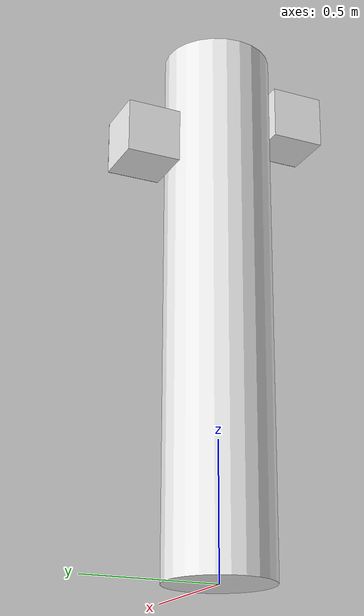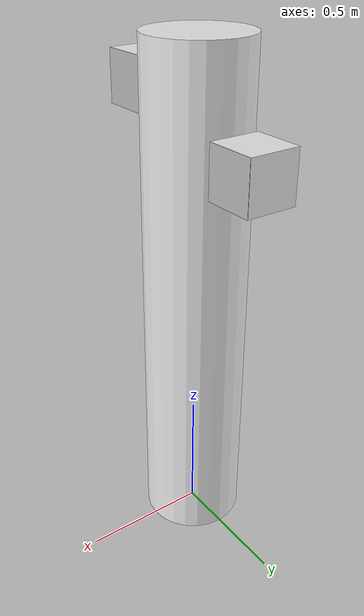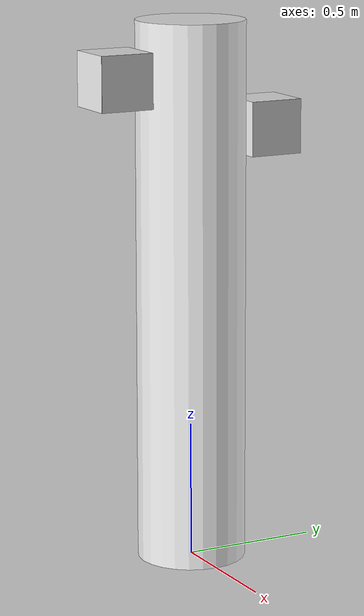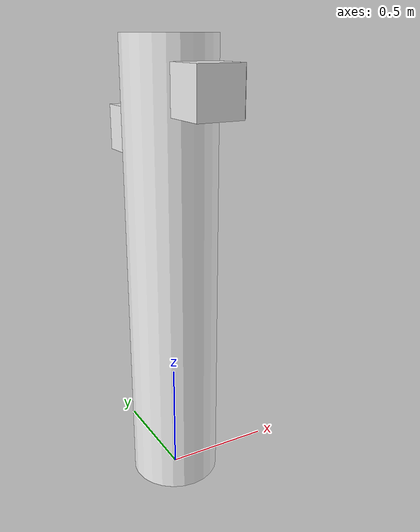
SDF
<?xml version="1.0" ?>
<sdf version="1.4">
  <model name="Torre_eletrica">
    <static>true</static>

    <link name="Tower">
    <pose>0 0 1 0 0 0</pose>
      <collision name="collision">
        <geometry>
          <cylinder>
           	<radius>0.2</radius>
           	<length>2</length>
          </cylinder>
        </geometry>
       </collision>
      <visual name="visual">
        <geometry>
          <cylinder>
            	<radius>0.2</radius>
           	<length>2</length>
          </cylinder>
        </geometry>
        <material>
          <script>
              <uri>file://media/materials/scripts/gazebo.material </uri>
           <name>Gazebo/White</name>
         </script>
        </material>
      </visual>
    </link>

    <link name="box_left">
      <pose> 0 -0.3 1.8 0 0 0 </pose>
      <collision name="collision">
        <geometry>
          <box>
            <size> 0.2 0.2 0.2</size>
          </box>
        </geometry>
      </collision>
      <visual name="visual">
        <geometry>
          <box>
            <size> 0.2 0.2 0.2</size>
          </box>
        </geometry>
        <material>
           <script>
               <uri>file://media/materials/scripts/gazebo.material </uri>
            <name>Gazebo/White</name>
          </script>
        </material>

      </visual>
    </link>

    <link name="box_right">
      <pose> 0 0.3 1.6 0 0 0 </pose>
      <collision name="collision">
        <geometry>
          <box>
            <size> 0.2 0.2 0.2</size>
          </box>
        </geometry>
      </collision>
      <visual name="visual">
        <geometry>
          <box>
            <size> 0.2 0.2 0.2</size>
          </box>
        </geometry>
        <material>
          <script>
              <uri>file://media/materials/scripts/gazebo.material</uri>
            <name>Gazebo/White</name>
          </script>
        </material>
      </visual>
    </link>

    <link name="qr1t">
      <pose> 0.101 -0.3 1.8 0 1.57079632679 0 </pose>
          <collision name="collision">
              <geometry>
                  <box>
                      <size> 0.2  0.2  0.00 </size>
                  </box>
              </geometry>

          </collision>

          <visual  name="visual">
              <geometry>
                  <box>
                      <size> 0.2  0.2  0.001</size>
                  </box>
              </geometry>

              <material>
                  <script>
                      <uri>model://torre_eletrica/materials/scripts/</uri>
                      <uri>model://torre_eletrica/materials/textures/</uri>
                      <name>DroneSim/qr1t</name>
                  </script>
              </material>
          </visual>
  </link>

  <link name="qr2t">
    <pose> 0.101 0.3 1.6 0 1.57079632679 0 </pose>
          <collision name="collision">
              <geometry>
                  <box>
                      <size> 0.2  0.2  0.00 </size>
                  </box>
              </geometry>

          </collision>

          <visual  name="visual">
              <geometry>
                  <box>
                      <size> 0.2  0.2  0.001</size>
                  </box>
              </geometry>

              <material>
                  <script>
                      <uri>model://torre_eletrica/materials/scripts/</uri>
                      <uri>model://torre_eletrica/materials/textures/</uri>
                      <name>DroneSim/qr2t</name>
                  </script>
              </material>
          </visual>
  </link>

  </model>
</sdf>
